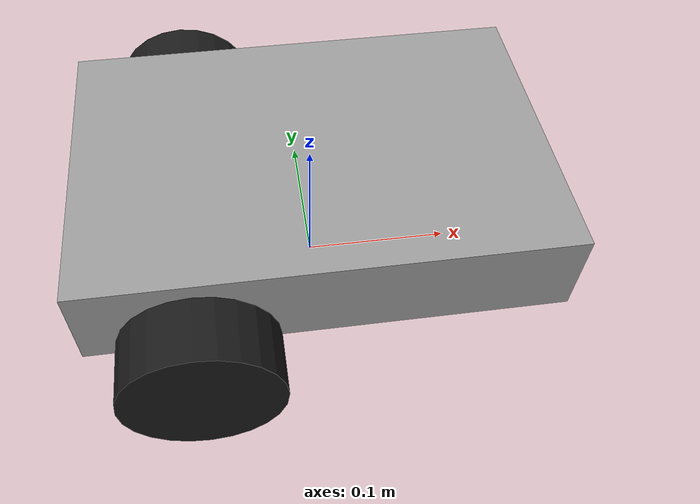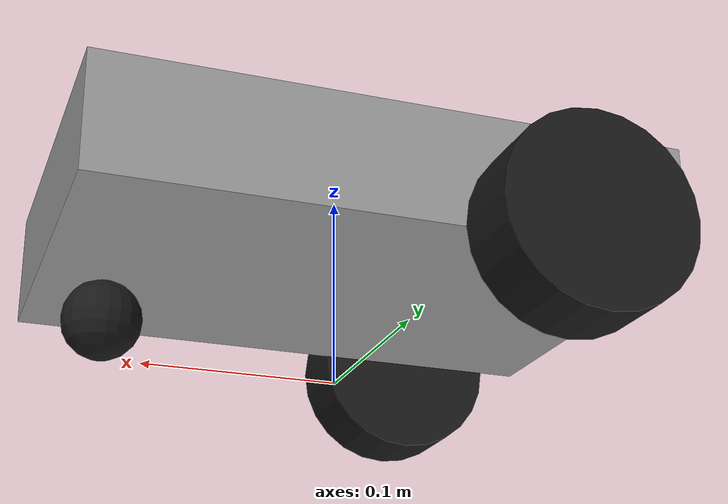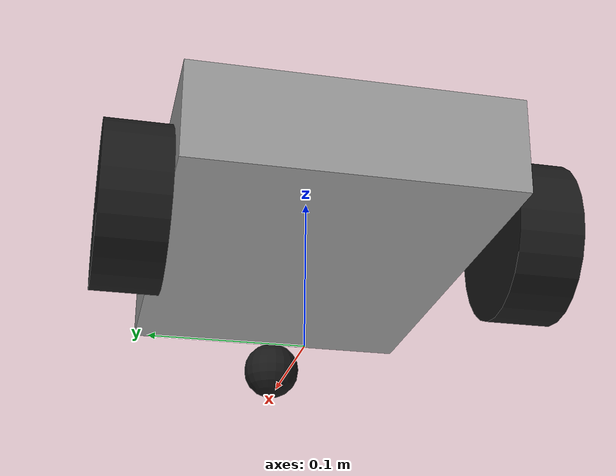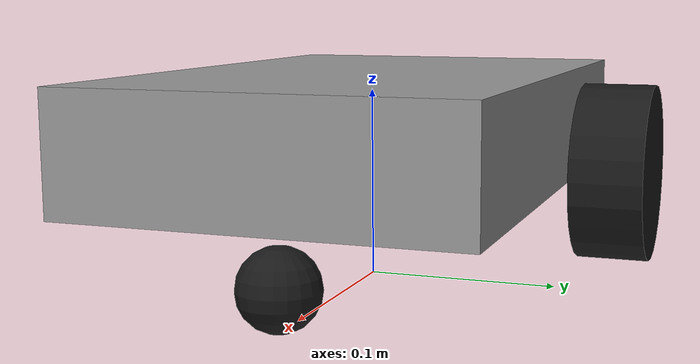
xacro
<?xml version="1.0"?>
<robot name="diffbot" xmlns:xacro="http://ros.org/wiki/xacro">
  <xacro:include filename="$(find diffbot_description)/urdf/diffbot_description.urdf.xacro"/>
  <xacro:include filename="$(find diffbot_description)/urdf/diffbot_ros2_control.xacro"/>
  <xacro:include filename="$(find diffbot_description)/urdf/diffbot_gazebo.xacro"/>
</robot>

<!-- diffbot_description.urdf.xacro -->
<robot name="diffbot" xmlns:xacro="http://ros.org/wiki/xacro">

  <xacro:property name="chassis_length" value="0.30"/>
  <xacro:property name="chassis_width" value="0.20"/>
  <xacro:property name="chassis_height" value="0.06"/>
  <xacro:property name="wheel_radius" value="0.05"/>
  <xacro:property name="wheel_width" value="0.04"/>
  <xacro:property name="wheel_separation" value="0.24"/>
  <xacro:property name="base_height" value="0.08"/>

  <material name="grey"><color rgba="0.6 0.6 0.6 1"/></material>
  <material name="black"><color rgba="0.1 0.1 0.1 1"/></material>

  <link name="base_footprint"/>

  <joint name="base_joint" type="fixed">
    <parent link="base_footprint"/>
    <child link="base_link"/>
    <origin xyz="0 0 ${base_height}" rpy="0 0 0"/>
  </joint>

  <link name="base_link">
    <visual>
      <geometry><box size="${chassis_length} ${chassis_width} ${chassis_height}"/></geometry>
      <material name="grey"/>
    </visual>
    <collision>
      <geometry><box size="${chassis_length} ${chassis_width} ${chassis_height}"/></geometry>
    </collision>
    <inertial>
      <mass value="2.0"/>
      <inertia ixx="0.01" ixy="0" ixz="0" iyy="0.02" iyz="0" izz="0.02"/>
    </inertial>
  </link>

  <xacro:macro name="wheel" params="prefix reflect">
    <link name="${prefix}_wheel">
      <visual>
        <origin xyz="0 0 0" rpy="1.5708 0 0"/>
        <geometry><cylinder radius="${wheel_radius}" length="${wheel_width}"/></geometry>
        <material name="black"/>
      </visual>
      <collision>
        <origin xyz="0 0 0" rpy="1.5708 0 0"/>
        <geometry><cylinder radius="${wheel_radius}" length="${wheel_width}"/></geometry>
      </collision>
      <inertial>
        <mass value="0.2"/>
        <inertia ixx="0.0002" ixy="0" ixz="0" iyy="0.0002" iyz="0" izz="0.0003"/>
      </inertial>
    </link>
    <joint name="${prefix}_wheel_joint" type="continuous">
      <parent link="base_link"/>
      <child link="${prefix}_wheel"/>
      <origin xyz="-0.08 ${reflect * wheel_separation/2} -${base_height - wheel_radius}" rpy="0 0 0"/>
      <axis xyz="0 1 0"/>
    </joint>
  </xacro:macro>

  <xacro:wheel prefix="left" reflect="1"/>
  <xacro:wheel prefix="right" reflect="-1"/>

  <link name="caster_wheel">
    <visual>
      <geometry><sphere radius="0.02"/></geometry>
      <material name="black"/>
    </visual>
    <collision>
      <geometry><sphere radius="0.02"/></geometry>
    </collision>
    <inertial>
      <mass value="0.05"/>
      <inertia ixx="0.00001" ixy="0" ixz="0" iyy="0.00001" iyz="0" izz="0.00001"/>
    </inertial>
  </link>
  <joint name="caster_joint" type="fixed">
    <parent link="base_link"/>
    <child link="caster_wheel"/>
    <origin xyz="0.12 0 -${base_height - 0.02}" rpy="0 0 0"/>
  </joint>

</robot>
